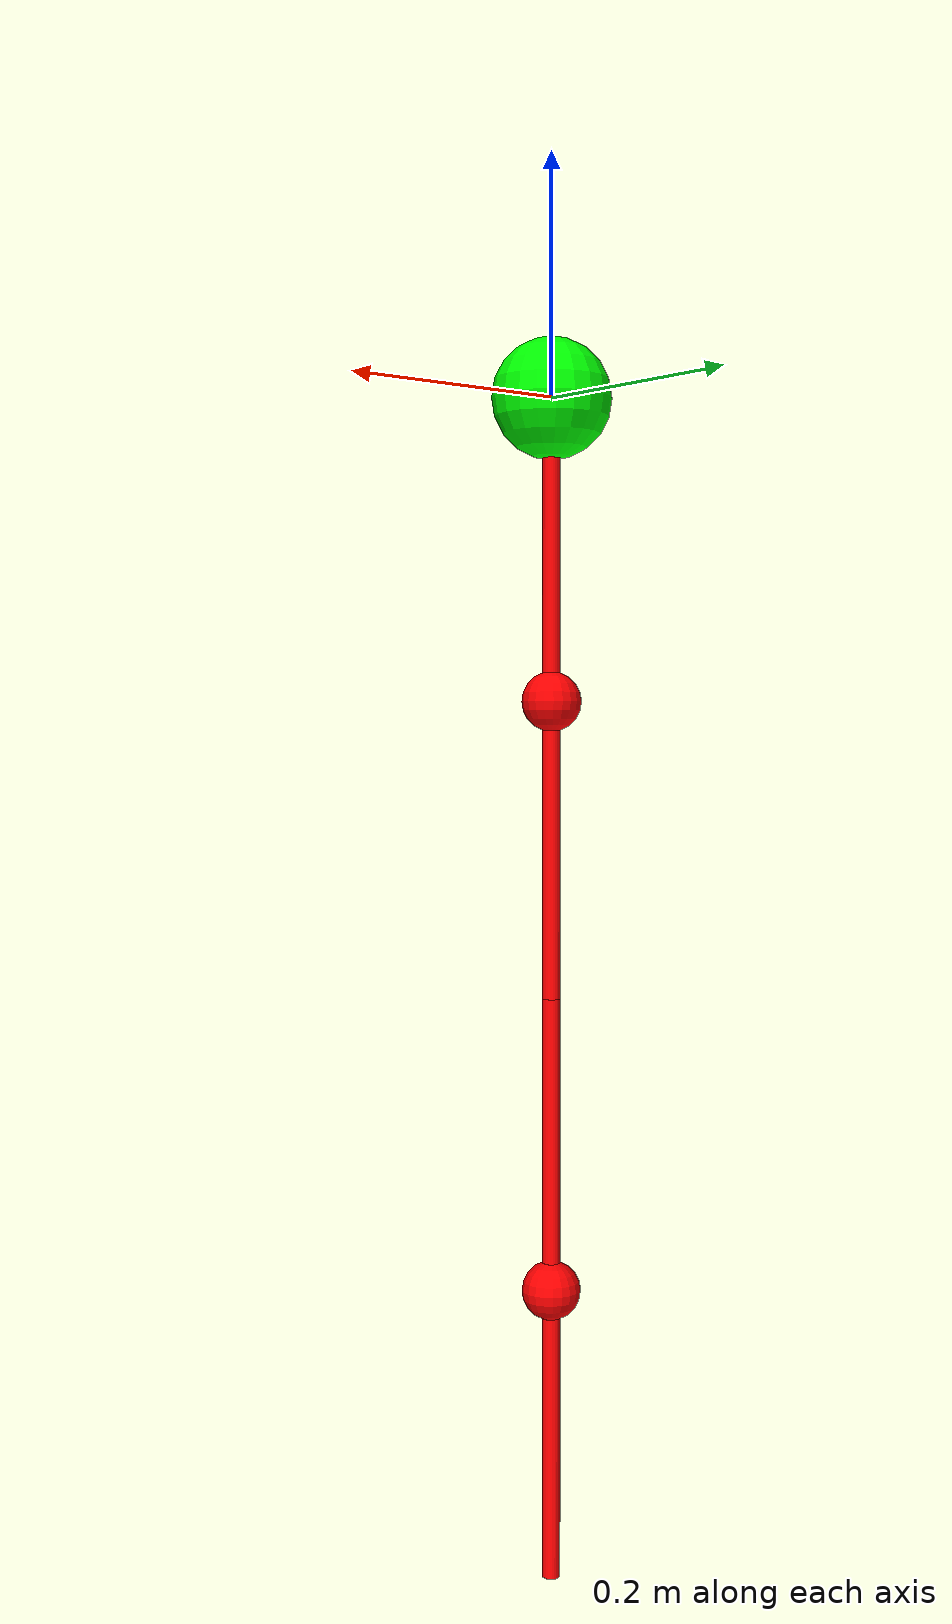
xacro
<?xml version="1.0"?>

<robot name="KneedCompassGait" xmlns:xacro="http://ros.org/wiki/xacro">

  <xacro:property name="mh" value="10" />
  <xacro:property name="m" value="2.5" />
  <xacro:property name="a" value=".25" />
  <xacro:property name="b" value=".25" />

  <xacro:macro name="leg" params="lr cname color">
    <link name="${lr}_leg">
      <visual>
      	<origin xyz="0 0 ${-(a+b)/2}" />
	      <geometry>
	        <cylinder radius="0.0075" length="${a+b}"/>
      	</geometry>
        <material name="${cname}">
          <color rgba="${color}" />
        </material>
      </visual>
      <collision>
	      <origin xyz="0 0 ${-a-b}" />
	      <geometry>
	        <sphere radius="0"/>
	      </geometry>
      </collision>
    </link>
    <link name="${lr}_leg_mass">
      <visual>
        <origin xyz="0 0 ${-a}" />
       	<geometry>
	        <sphere radius="${.01*m}" />
	      </geometry>
        <material name="${cname}">
          <color rgba="${color}" />
        </material>
      </visual>
      <inertial>
        <origin xyz="0 0 ${-a}" />
	        <mass value="${m}" />
        	<inertia ixx="0"  ixy="0"  ixz="0" iyy="0" iyz="0" izz="0" />
      </inertial>
    </link>
    <joint name="${lr}_leg_mass_weld" type="fixed">
      <parent link="${lr}_leg" />
      <child link="${lr}_leg_mass" />
    </joint>
  </xacro:macro>

  <xacro:macro name="collisionlessleg" params="lr cname color">
    <link name="${lr}_leg">
      <visual>
      	<origin xyz="0 0 ${-(a+b)/2}" />
	      <geometry>
	        <cylinder radius="0.0075" length="${a+b}"/>
      	</geometry>
        <material name="${cname}">
          <color rgba="${color}" />
        </material>
      </visual>
    </link>
    <link name="${lr}_leg_mass">
      <visual>
        <origin xyz="0 0 ${-a}" />
       	<geometry>
	        <sphere radius="${.01*m}" />
	      </geometry>
        <material name="${cname}">
          <color rgba="${color}" />
        </material>
      </visual>
      <inertial>
        <origin xyz="0 0 ${-a}" />
	        <mass value="${m}" />
        	<inertia ixx="0"  ixy="0"  ixz="0" iyy="0" iyz="0" izz="0" />
      </inertial>
    </link>
    <joint name="${lr}_leg_mass_weld" type="fixed">
      <parent link="${lr}_leg" />
      <child link="${lr}_leg_mass" />
    </joint>
  </xacro:macro>

  <link name="hip">
    <inertial>
      <mass value="${mh}" />
      <inertia ixx="0"  ixy="0"  ixz="0" iyy="0" iyz="0" izz="0" />
    </inertial>
    <visual>
      <geometry>
        <sphere radius="${.005*mh}" />
      </geometry>
      <material name="green">
        <color rgba="0 1 0 1" />
      </material>
    </visual>
  </link>

  <xacro:collisionlessleg lr="left_upper" cname="red" color="1 0 0 1" />
  <xacro:leg lr="left_lower" cname="red" color="1 0 0 1" />
  <xacro:collisionlessleg lr="right_upper" cname="blue" color="0 0 1 1" />
  <xacro:leg lr="right_lower"  cname="blue" color="0 0 1 1" />

  <joint name="left_leg_weld" type="fixed">
    <parent link="hip" />
    <child link="left_upper_leg" />
  </joint>

  <joint name="hip_pin" type="continuous">
    <parent link="hip" />
    <child link="right_upper_leg" />
    <axis xyz="0 1 0"/>
  </joint>

  <joint name="left_knee_pin" type="continuous">
    <parent link="left_upper_leg" />
    <child link="left_lower_leg" />
    <axis xyz="0 1 0"/>
    <origin xyz="0 0 ${-a-b}" />
    <limit upper="0" effort="100" velocity="100" lower="-Inf"/>
  </joint>

  <joint name="right_knee_pin" type="continuous">
    <parent link="right_upper_leg" />
    <child link="right_lower_leg" />
    <axis xyz="0 1 0"/>
    <origin xyz="0 0 ${-a-b}" />
    <limit upper="0" effort="100" velocity="100" lower="-Inf"/>
  </joint>

  <transmission type="SimpleTransmission" name="hip_trans">
    <actuator name="hip_torque" />
    <joint name="hip_pin" />
    <mechanicalReduction>1</mechanicalReduction>
  </transmission>

  <transmission type="SimpleTransmission" name="left_knee_trans">
    <actuator name="left_knee_torque" />
    <joint name="left_knee_pin" />
    <mechanicalReduction>1</mechanicalReduction>
  </transmission>

  <transmission type="SimpleTransmission" name="right_knee_trans">
    <actuator name="right_knee_torque" />
    <joint name="right_knee_pin" />
    <mechanicalReduction>1</mechanicalReduction>
  </transmission>

</robot>
